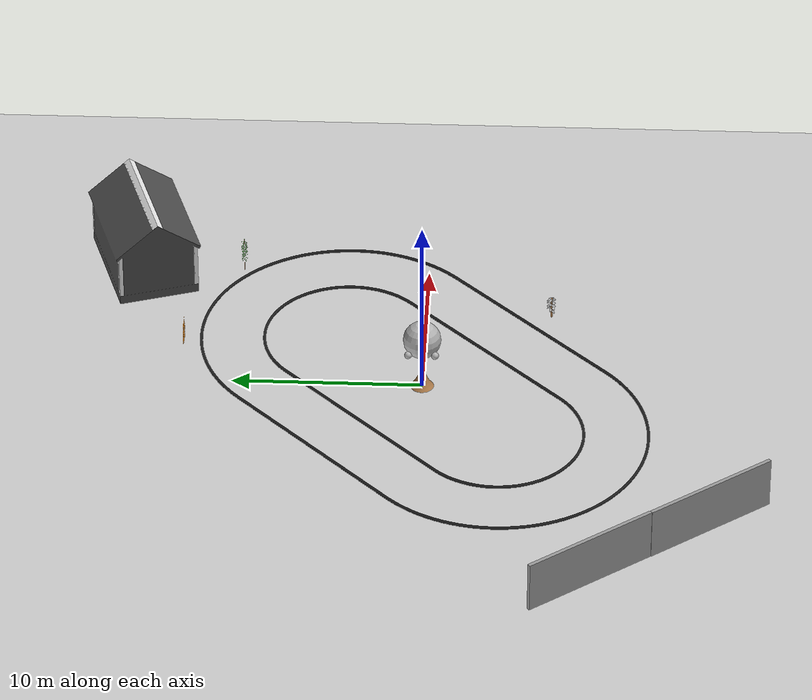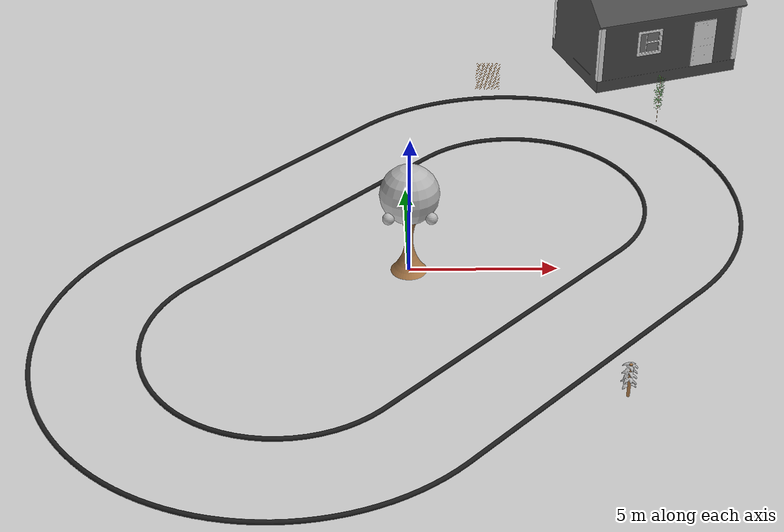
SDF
<sdf version="1.6">
 <world name="default">
  <plugin name="spawn_obstacles" filename="libobstacles_factory.so"/>
  <scene>
   <sky><clouds><speed>12</speed></clouds></sky>
   <ambient>1 1 1 1</ambient>
   <shadows>1</shadows>
   <background>0.7 0.7 0.7 1</background>
  </scene>
  <light name="sun" type="directional">
   <pose>0 0 10 0 -0 0</pose>
   <diffuse>0.8 0.8 0.8 1</diffuse>
   <specular>0.1 0.1 0.1 1</specular>
   <attenuation>
    <range>1000</range>
    <constant>0.9</constant>
    <linear>0.01</linear>
    <quadratic>0.001</quadratic>
   </attenuation>
   <direction>-0.5 0.5 -1</direction>
  </light>
  <model name="track">
   <static>1</static>
   <link name="link">
    <collision name="collision">
     <geometry><mesh><uri>model://urdf/cad/autoRallyTrack.dae</uri><scale>1 1 1</scale></mesh></geometry>
     <laser_retro>2e+07</laser_retro>
     <surface><friction><ode><mu>100</mu><mu2>50</mu2></ode></friction></surface>
    </collision>
    <visual name="visual">
     <cast_shadows>0</cast_shadows>
     <geometry><mesh><uri>model://urdf/cad/autoRallyTrack.dae</uri><scale>1 1 1</scale></mesh></geometry>
     <material><script><uri>model://urdf/gazebo.material</uri><name>Gazebo/Black</name></script></material>
    </visual>
   </link>
   <pose>0 0 0.0762 0 -0 0.785398</pose>
  </model>
  <model name="blended_plane">
   <static>1</static>
   <link name="link">
    <collision name="collision">
     <geometry><plane><normal>0 0 1</normal><size>90 90</size></plane></geometry>
     <surface><friction><ode><mu>100</mu><mu2>50</mu2></ode></friction></surface>
    </collision>
    <visual name="visual">
     <cast_shadows>0</cast_shadows>
     <geometry><plane><normal>0 0 1</normal><size>90 90</size></plane></geometry>
     <material><script><uri>model://urdf/gazebo.material</uri><name>Gazebo/Texture_blend</name></script></material>
    </visual>
   </link>
   <pose>0 0 0 0 -0 0.785398</pose>
  </model>
  <model name="tree">
   <static>1</static>
   <link name="trunk">
    <collision name="collision">
     <geometry><mesh><uri>model://urdf/cad/tree.dae</uri><scale>1 1 1</scale></mesh></geometry>
     <surface><friction><ode><mu>100</mu><mu2>50</mu2></ode></friction></surface>
    </collision>
    <visual name="visual">
     <cast_shadows>0</cast_shadows>
     <geometry><mesh><uri>model://urdf/cad/tree.dae</uri><scale>1 1 1</scale></mesh></geometry>
     <material>
      <script><uri>file://media/materials/scripts/gazebo.material</uri><name>Gazebo/WoodPallet</name></script>
     </material>
    </visual>
   </link>
   <link name="center_ball">
    <pose>0 0 3 0 -0 0</pose>
    <collision name="collision">
     <geometry><sphere><radius>1</radius></sphere></geometry>
     <surface><friction><ode><mu>100</mu><mu2>50</mu2></ode></friction></surface>
    </collision>
    <visual name="visual">
     <cast_shadows>0</cast_shadows>
     <geometry><sphere><radius>1</radius></sphere></geometry>
     <material><script><uri>model://urdf/gazebo.material</uri><name>Gazebo/Leaf_image</name></script></material>
    </visual>
   </link>
   <link name="ball_1">
    <pose>0.7 0.7 2.5 0 -0 0</pose>
    <collision name="collision">
     <geometry><sphere><radius>0.2</radius></sphere></geometry>
     <surface><friction><ode><mu>100</mu><mu2>50</mu2></ode></friction></surface>
    </collision>
    <visual name="visual">
     <cast_shadows>0</cast_shadows>
     <geometry><sphere><radius>0.2</radius></sphere></geometry>
     <material><script><uri>model://urdf/gazebo.material</uri><name>Gazebo/Leaf_image</name></script></material>
    </visual>
   </link>
   <link name="ball_2">
    <pose>-0.7 -0.7 2.5 0 -0 0</pose>
    <collision name="collision">
     <geometry><sphere><radius>0.2</radius></sphere></geometry>
     <surface><friction><ode><mu>100</mu><mu2>50</mu2></ode></friction></surface>
    </collision>
    <visual name="visual">
     <cast_shadows>0</cast_shadows>
     <geometry><sphere><radius>0.2</radius></sphere></geometry>
     <material><script><uri>model://urdf/gazebo.material</uri><name>Gazebo/Leaf_image</name></script></material>
    </visual>
   </link>
   <link name="ball_3">
    <pose>-0.7 0.7 2.5 0 -0 0</pose>
    <collision name="collision">
     <geometry><sphere><radius>0.2</radius></sphere></geometry>
     <surface><friction><ode><mu>100</mu><mu2>50</mu2></ode></friction></surface>
    </collision>
    <visual name="visual">
     <cast_shadows>0</cast_shadows>
     <geometry><sphere><radius>0.2</radius></sphere></geometry>
     <material><script><uri>model://urdf/gazebo.material</uri><name>Gazebo/Leaf_image</name></script></material>
    </visual>
   </link>
   <link name="ball_4">
    <pose>0.7 -0.7 2.5 0 -0 0</pose>
    <collision name="collision">
     <geometry><sphere><radius>0.2</radius></sphere></geometry>
     <surface><friction><ode><mu>100</mu><mu2>50</mu2></ode></friction></surface>
    </collision>
    <visual name="visual">
     <cast_shadows>0</cast_shadows>
     <geometry><sphere><radius>0.2</radius></sphere></geometry>
     <material><script><uri>model://urdf/gazebo.material</uri><name>Gazebo/Leaf_image</name></script></material>
    </visual>
   </link>
  </model>
  <model name="bamboo">
   <static>1</static>
   <link name="link">
    <collision name="collision">
     <geometry><mesh><uri>model://urdf/cad/bamboo_leaves.dae</uri><scale>1 1 1</scale></mesh></geometry>
     <surface><friction><ode><mu>100</mu><mu2>50</mu2></ode></friction></surface>
    </collision>
    <visual name="visual">
     <cast_shadows>0</cast_shadows>
     <geometry><mesh><uri>model://urdf/cad/bamboo_leaves.dae</uri><scale>1 1 1</scale></mesh></geometry>
     <material><script><uri>model://urdf/gazebo.material</uri><name>Gazebo/Grass_image</name></script></material>
    </visual>
   </link>
   <link name="stem">
    <collision name="collision">
     <geometry><cylinder><radius>0.05</radius><length>1.2</length></cylinder></geometry>
     <surface><friction><ode><mu>100</mu><mu2>50</mu2></ode></friction></surface>
    </collision>
    <visual name="visual">
     <cast_shadows>0</cast_shadows>
     <geometry><cylinder><radius>0.005</radius><length>4</length></cylinder></geometry>
     <material>
      <script><uri>file://media/materials/scripts/gazebo.material</uri><name>Gazebo/Wood</name></script>
     </material>
    </visual>
   </link>
   <pose>10 10 0 0 -0 0</pose>
  </model>
  <model name="bush">
   <static>1</static>
   <link name="link">
    <pose>-0.439275 0.4 0.1 0 -0 0</pose>
    <collision name="collision">
     <geometry><mesh><uri>model://urdf//cadbush.dae</uri><scale>1 1 1</scale></mesh></geometry>
     <surface><friction><ode><mu>100</mu><mu2>50</mu2></ode></friction></surface>
    </collision>
    <visual name="visual">
     <cast_shadows>0</cast_shadows>
     <geometry><mesh><uri>model://urdf/cad/bush.dae</uri><scale>1 1 1</scale></mesh></geometry>
     <material><script><uri>model://urdf/gazebo.material</uri><name>Gazebo/Bamboo_image</name></script></material>
    </visual>
   </link>
   <link name="stem">
    <collision name="collision">
     <geometry><cylinder><radius>0.05</radius><length>1.2</length></cylinder></geometry>
     <surface><friction><ode><mu>100</mu><mu2>50</mu2></ode></friction></surface>
    </collision>
    <visual name="visual">
     <cast_shadows>0</cast_shadows>
     <geometry><cylinder><radius>0.05</radius><length>1.2</length></cylinder></geometry>
     <material>
      <script><uri>file://media/materials/scripts/gazebo.material</uri><name>Gazebo/Wood</name></script>
     </material>
    </visual>
   </link>
   <pose>6.4 -6.67 0.6 0 -0 0</pose>
  </model>
  <model name="fence">
   <static>1</static>
   <link name="link">
    <collision name="collision">
     <geometry><mesh><uri>model://urdf/cad/fence.dae</uri><scale>1 1 1</scale></mesh></geometry>
     <surface><friction><ode><mu>100</mu><mu2>50</mu2></ode></friction></surface>
    </collision>
    <visual name="visual">
     <cast_shadows>0</cast_shadows>
     <geometry><mesh><uri>model://urdf/cad/fence.dae</uri><scale>1 1 1</scale></mesh></geometry>
     <material>
      <script><uri>model://urdf/gazebo.material</uri><name>Gazebo/Construction_orange</name></script>
     </material>
    </visual>
   </link>
   <pose>3.1 12.8 0 0 -0 0</pose>
  </model>
  <model name="shed">
   <static>1</static>
   <link name="walls">
    <collision name="collision">
     <geometry><mesh><uri>model://urdf/cad/shed_outer.dae</uri><scale>1 1 1</scale></mesh></geometry>
     <surface><friction><ode><mu>100</mu><mu2>50</mu2></ode></friction></surface>
    </collision>
    <visual name="visual">
     <cast_shadows>0</cast_shadows>
     <geometry><mesh><uri>model://urdf/cad/shed_outer.dae</uri><scale>1 1 1</scale></mesh></geometry>
     <material><script><uri>model://urdf/gazebo.material</uri><name>Gazebo/DarkGrey</name></script></material>
    </visual>
   </link>
   <link name="edges">
    <collision name="collision">
     <geometry><mesh><uri>model://urdf/cad/shed_edges.dae</uri><scale>1 1 1</scale></mesh></geometry>
     <surface><friction><ode><mu>100</mu><mu2>50</mu2></ode></friction></surface>
    </collision>
    <visual name="visual">
     <cast_shadows>0</cast_shadows>
     <geometry><mesh><uri>model://urdf/cad/shed_edges.dae</uri><scale>1 1 1</scale></mesh></geometry>
     <material><script><uri>model://urdf/gazebo.material</uri><name>Gazebo/White</name></script></material>
    </visual>
   </link>
   <pose>14.1 14.4 0 0 -0 1.89</pose>
  </model>
  <model name="grey_wall_1">
   <static>1</static>
   <link name="link">
    <pose>0 0 1.4 0 -0 0</pose>
    <collision name="collision"><geometry><box><size>7.5 0.2 2.8</size></box></geometry></collision>
    <visual name="visual">
     <cast_shadows>0</cast_shadows>
     <geometry><box><size>7.5 0.2 2.8</size></box></geometry>
     <material>
      <script>
       <uri>model://grey_wall/materials/scripts</uri>
       <uri>model://grey_wall/materials/textures</uri>
       <name>vrc/grey_wall</name>
      </script>
     </material>
    </visual>
   </link>
   <pose>-11.428 -15 0 0 0 -0.9276</pose>
  </model>
  <model name="grey_wall_2">
   <static>1</static>
   <link name="link">
    <pose>0 0 1.4 0 -0 0</pose>
    <collision name="collision"><geometry><box><size>7.5 0.2 2.8</size></box></geometry></collision>
    <visual name="visual">
     <cast_shadows>0</cast_shadows>
     <geometry><box><size>7.5 0.2 2.8</size></box></geometry>
     <material>
      <script>
       <uri>model://grey_wall/materials/scripts</uri>
       <uri>model://grey_wall/materials/textures</uri>
       <name>vrc/grey_wall</name>
      </script>
     </material>
    </visual>
   </link>
   <pose>-15.9 -9 0 0 0 -0.9276</pose>
  </model>
  <gravity>0 0 -9.8</gravity>
  <magnetic_field>6e-06 2.3e-05 -4.2e-05</magnetic_field>
  <atmosphere type="adiabatic"/>
  <physics name="default_physics" default="0" type="ode">
   <max_step_size>0.001</max_step_size>
   <real_time_factor>1</real_time_factor>
   <real_time_update_rate>1000</real_time_update_rate>
  </physics>
  <spherical_coordinates>
   <surface_model>EARTH_WGS84</surface_model>
   <latitude_deg>0</latitude_deg>
   <longitude_deg>0</longitude_deg>
   <elevation>0</elevation>
   <heading_deg>0</heading_deg>
  </spherical_coordinates>
 </world>
</sdf>
